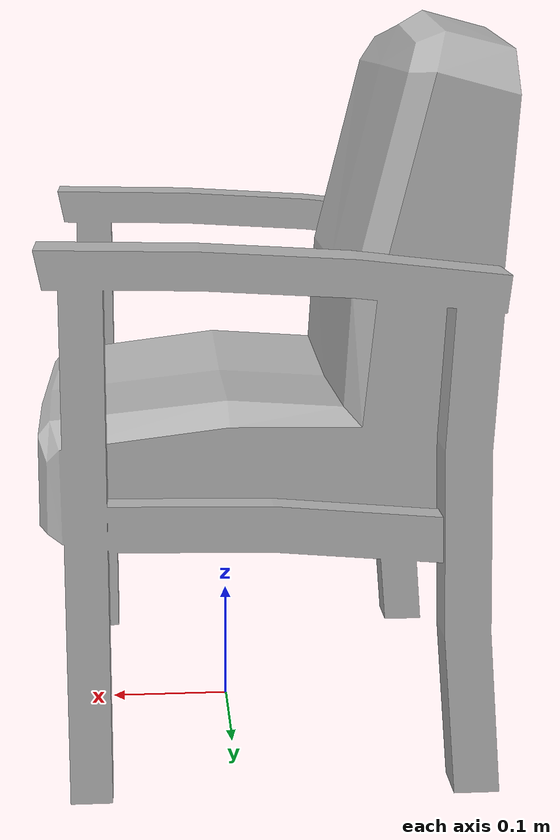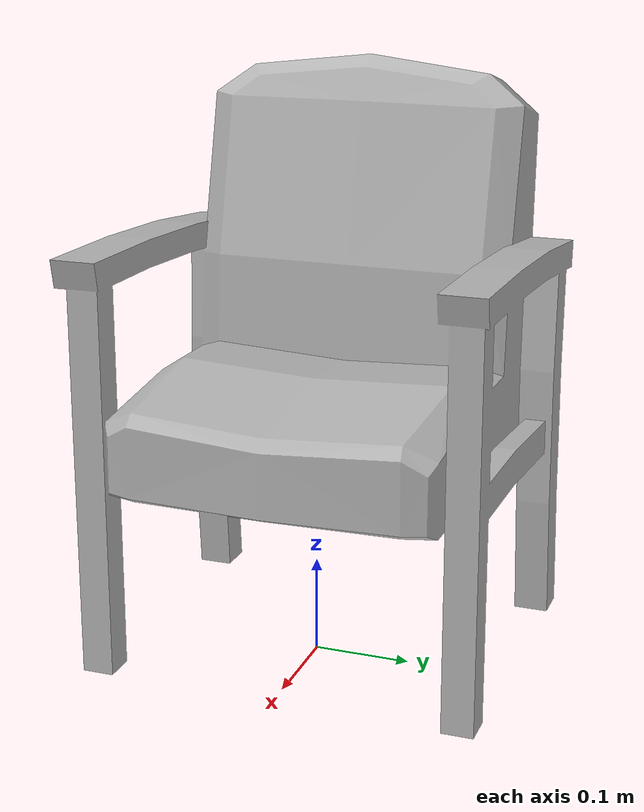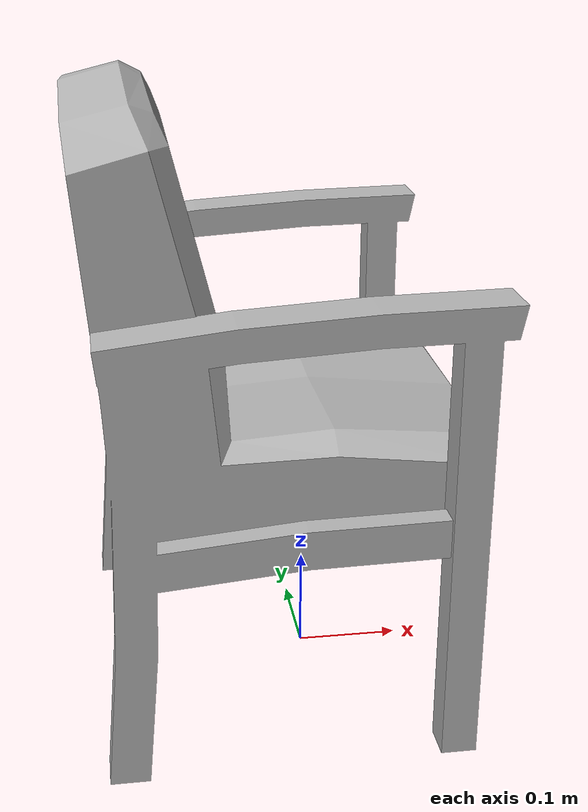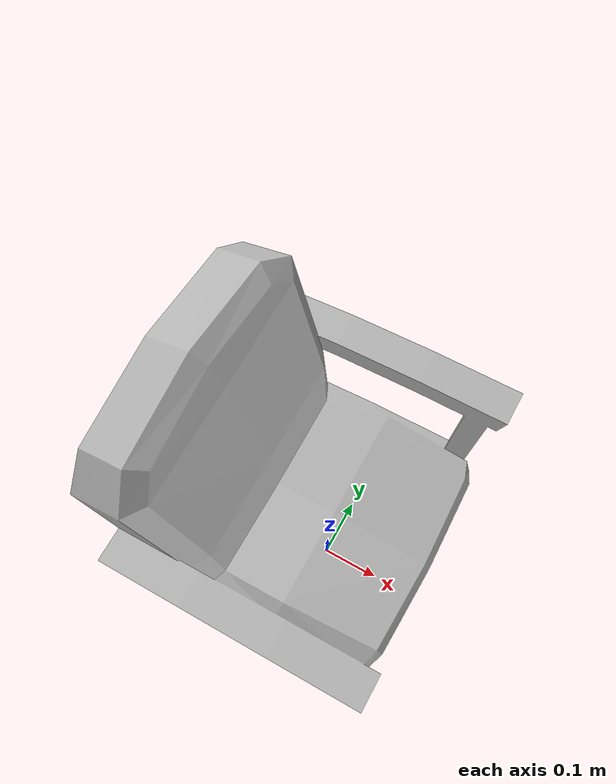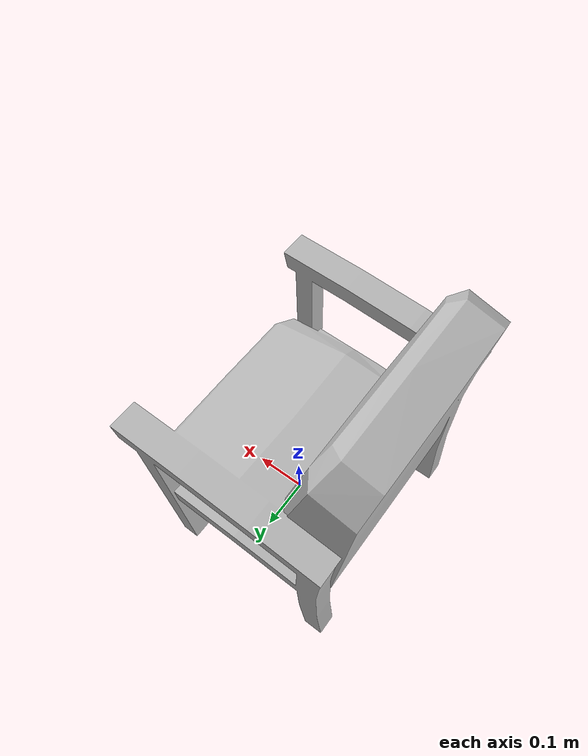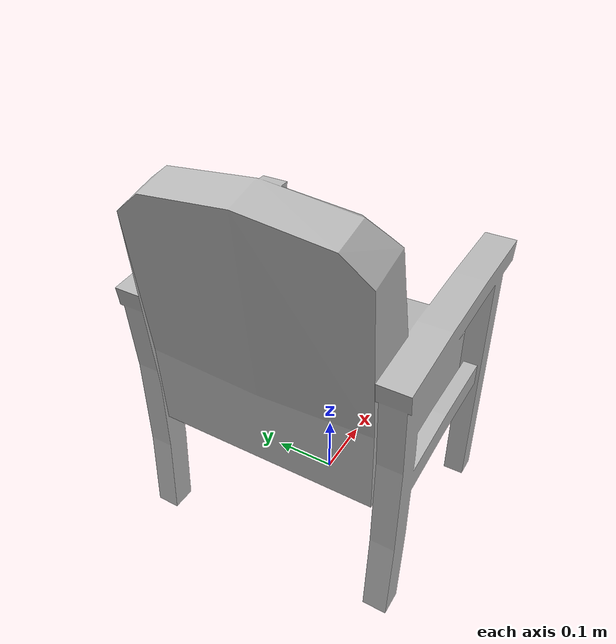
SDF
<?xml version="1.0"?>

<sdf version="1.6">
  <model name='Chair'>
    <link name="body">
      <pose>0 0 0 0 0 1.5708</pose>

      <visual name="visual">
        <geometry>
          <mesh>
            <uri>model://Chair/meshes/Chair.obj</uri>
            <scale>0.006 0.006 0.006</scale>
          </mesh>
        </geometry>
      </visual>

      <collision name="collision">
        <geometry>
          <mesh>
            <uri>model://Chair/meshes/Chair.obj</uri>
            <scale>0.006 0.006 0.006</scale>
          </mesh>
        </geometry>
      </collision>

    </link>
  </model>
</sdf>
